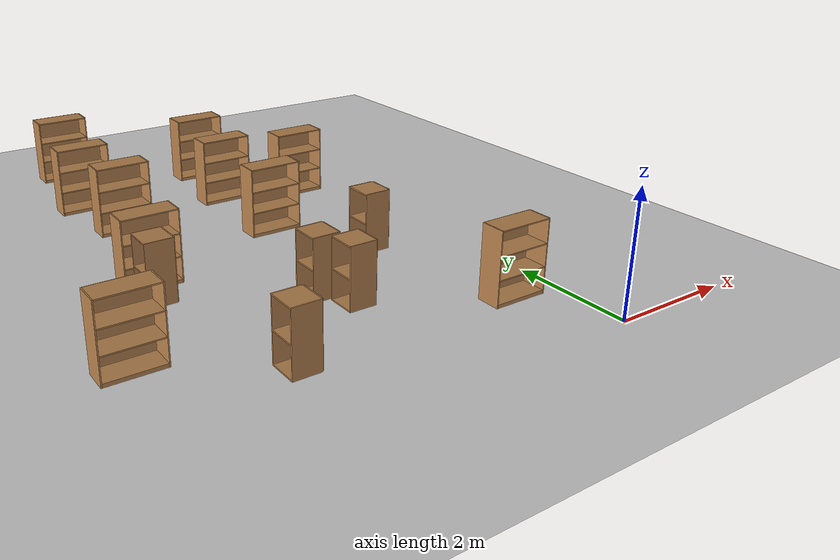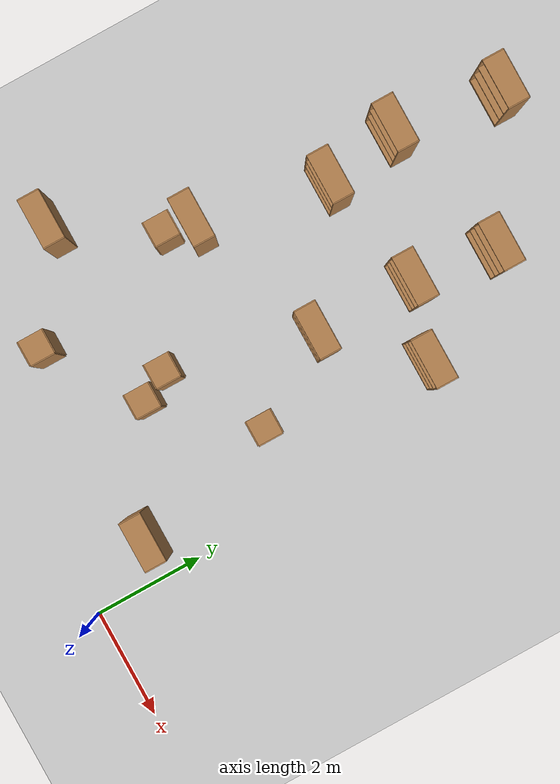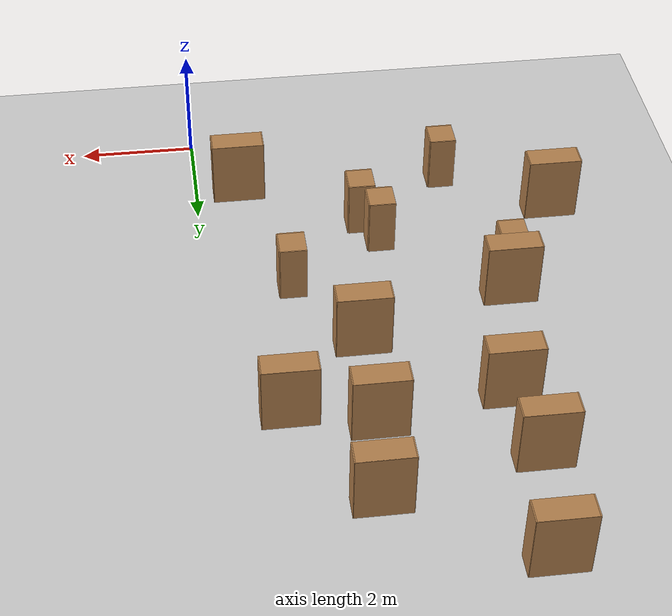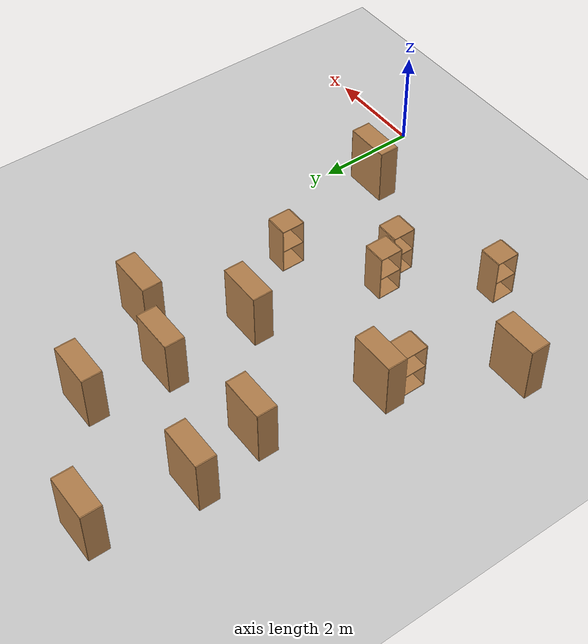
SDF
<sdf version="1.6">
 <world name="default">
  <model name="ground_plane">
   <static>1</static>
   <link name="link">
    <collision name="collision">
     <geometry><plane><normal>0 0 1</normal><size>100 100</size></plane></geometry>
     <surface><friction><ode><mu>100</mu><mu2>50</mu2></ode></friction></surface>
    </collision>
    <visual name="visual">
     <cast_shadows>0</cast_shadows>
     <geometry><plane><normal>0 0 1</normal><size>100 100</size></plane></geometry>
     <material>
      <script><uri>file://media/materials/scripts/gazebo.material</uri><name>Gazebo/Grey</name></script>
     </material>
    </visual>
   </link>
  </model>
  <model name="bookshelf_1">
   <static>1</static>
   <link name="link">
    <inertial><mass>1</mass></inertial>
    <collision name="back">
     <pose>0 0.005 0.6 0 -0 0</pose>
     <geometry><box><size>0.9 0.01 1.2</size></box></geometry>
    </collision>
    <visual name="visual1">
     <pose>0 0.005 0.6 0 -0 0</pose>
     <geometry><box><size>0.9 0.01 1.2</size></box></geometry>
     <material>
      <script><uri>file://media/materials/scripts/gazebo.material</uri><name>Gazebo/Wood</name></script>
     </material>
    </visual>
    <collision name="left_side">
     <pose>0.45 -0.195 0.6 0 -0 0</pose>
     <geometry><box><size>0.02 0.4 1.2</size></box></geometry>
    </collision>
    <visual name="visual2">
     <pose>0.45 -0.195 0.6 0 -0 0</pose>
     <geometry><box><size>0.02 0.4 1.2</size></box></geometry>
     <material>
      <script><uri>file://media/materials/scripts/gazebo.material</uri><name>Gazebo/Wood</name></script>
     </material>
    </visual>
    <collision name="right_side">
     <pose>-0.45 -0.195 0.6 0 -0 0</pose>
     <geometry><box><size>0.02 0.4 1.2</size></box></geometry>
    </collision>
    <visual name="visual3">
     <pose>-0.45 -0.195 0.6 0 -0 0</pose>
     <geometry><box><size>0.02 0.4 1.2</size></box></geometry>
     <material>
      <script><uri>file://media/materials/scripts/gazebo.material</uri><name>Gazebo/Wood</name></script>
     </material>
    </visual>
    <collision name="bottom">
     <pose>0 -0.195 0.03 0 -0 0</pose>
     <geometry><box><size>0.88 0.4 0.06</size></box></geometry>
    </collision>
    <visual name="visual4">
     <pose>0 -0.195 0.03 0 -0 0</pose>
     <geometry><box><size>0.88 0.4 0.06</size></box></geometry>
     <material>
      <script><uri>file://media/materials/scripts/gazebo.material</uri><name>Gazebo/Wood</name></script>
     </material>
    </visual>
    <collision name="top">
     <pose>0 -0.195 1.19 0 -0 0</pose>
     <geometry><box><size>0.88 0.4 0.02</size></box></geometry>
    </collision>
    <visual name="visual5">
     <pose>0 -0.195 1.19 0 -0 0</pose>
     <geometry><box><size>0.88 0.4 0.02</size></box></geometry>
     <material>
      <script><uri>file://media/materials/scripts/gazebo.material</uri><name>Gazebo/Wood</name></script>
     </material>
    </visual>
    <collision name="low_shelf">
     <pose>0 -0.195 0.43 0 -0 0</pose>
     <geometry><box><size>0.88 0.4 0.02</size></box></geometry>
    </collision>
    <visual name="visual6">
     <pose>0 -0.195 0.43 0 -0 0</pose>
     <geometry><box><size>0.88 0.4 0.02</size></box></geometry>
     <material>
      <script><uri>file://media/materials/scripts/gazebo.material</uri><name>Gazebo/Wood</name></script>
     </material>
    </visual>
    <collision name="high_shelf">
     <pose>0 -0.195 0.8 0 -0 0</pose>
     <geometry><box><size>0.88 0.4 0.02</size></box></geometry>
    </collision>
    <visual name="visual7">
     <pose>0 -0.195 0.8 0 -0 0</pose>
     <geometry><box><size>0.88 0.4 0.02</size></box></geometry>
     <material>
      <script><uri>file://media/materials/scripts/gazebo.material</uri><name>Gazebo/Wood</name></script>
     </material>
    </visual>
   </link>
   <pose>-4.77804 8.57789 0 0 -0 0</pose>
  </model>
  <model name="bookshelf_2">
   <static>1</static>
   <link name="link">
    <inertial><mass>1</mass></inertial>
    <collision name="back">
     <pose>0 0.005 0.6 0 -0 0</pose>
     <geometry><box><size>0.9 0.01 1.2</size></box></geometry>
    </collision>
    <visual name="visual1">
     <pose>0 0.005 0.6 0 -0 0</pose>
     <geometry><box><size>0.9 0.01 1.2</size></box></geometry>
     <material>
      <script><uri>file://media/materials/scripts/gazebo.material</uri><name>Gazebo/Wood</name></script>
     </material>
    </visual>
    <collision name="left_side">
     <pose>0.45 -0.195 0.6 0 -0 0</pose>
     <geometry><box><size>0.02 0.4 1.2</size></box></geometry>
    </collision>
    <visual name="visual2">
     <pose>0.45 -0.195 0.6 0 -0 0</pose>
     <geometry><box><size>0.02 0.4 1.2</size></box></geometry>
     <material>
      <script><uri>file://media/materials/scripts/gazebo.material</uri><name>Gazebo/Wood</name></script>
     </material>
    </visual>
    <collision name="right_side">
     <pose>-0.45 -0.195 0.6 0 -0 0</pose>
     <geometry><box><size>0.02 0.4 1.2</size></box></geometry>
    </collision>
    <visual name="visual3">
     <pose>-0.45 -0.195 0.6 0 -0 0</pose>
     <geometry><box><size>0.02 0.4 1.2</size></box></geometry>
     <material>
      <script><uri>file://media/materials/scripts/gazebo.material</uri><name>Gazebo/Wood</name></script>
     </material>
    </visual>
    <collision name="bottom">
     <pose>0 -0.195 0.03 0 -0 0</pose>
     <geometry><box><size>0.88 0.4 0.06</size></box></geometry>
    </collision>
    <visual name="visual4">
     <pose>0 -0.195 0.03 0 -0 0</pose>
     <geometry><box><size>0.88 0.4 0.06</size></box></geometry>
     <material>
      <script><uri>file://media/materials/scripts/gazebo.material</uri><name>Gazebo/Wood</name></script>
     </material>
    </visual>
    <collision name="top">
     <pose>0 -0.195 1.19 0 -0 0</pose>
     <geometry><box><size>0.88 0.4 0.02</size></box></geometry>
    </collision>
    <visual name="visual5">
     <pose>0 -0.195 1.19 0 -0 0</pose>
     <geometry><box><size>0.88 0.4 0.02</size></box></geometry>
     <material>
      <script><uri>file://media/materials/scripts/gazebo.material</uri><name>Gazebo/Wood</name></script>
     </material>
    </visual>
    <collision name="low_shelf">
     <pose>0 -0.195 0.43 0 -0 0</pose>
     <geometry><box><size>0.88 0.4 0.02</size></box></geometry>
    </collision>
    <visual name="visual6">
     <pose>0 -0.195 0.43 0 -0 0</pose>
     <geometry><box><size>0.88 0.4 0.02</size></box></geometry>
     <material>
      <script><uri>file://media/materials/scripts/gazebo.material</uri><name>Gazebo/Wood</name></script>
     </material>
    </visual>
    <collision name="high_shelf">
     <pose>0 -0.195 0.8 0 -0 0</pose>
     <geometry><box><size>0.88 0.4 0.02</size></box></geometry>
    </collision>
    <visual name="visual7">
     <pose>0 -0.195 0.8 0 -0 0</pose>
     <geometry><box><size>0.88 0.4 0.02</size></box></geometry>
     <material>
      <script><uri>file://media/materials/scripts/gazebo.material</uri><name>Gazebo/Wood</name></script>
     </material>
    </visual>
   </link>
   <pose>-2.41754 7.64902 0 0 -0 0</pose>
  </model>
  <model name="bookshelf_7">
   <static>1</static>
   <link name="link">
    <inertial><mass>1</mass></inertial>
    <collision name="back">
     <pose>0 0.005 0.6 0 -0 0</pose>
     <geometry><box><size>0.9 0.01 1.2</size></box></geometry>
    </collision>
    <visual name="visual1">
     <pose>0 0.005 0.6 0 -0 0</pose>
     <geometry><box><size>0.9 0.01 1.2</size></box></geometry>
     <material>
      <script><uri>file://media/materials/scripts/gazebo.material</uri><name>Gazebo/Wood</name></script>
     </material>
    </visual>
    <collision name="left_side">
     <pose>0.45 -0.195 0.6 0 -0 0</pose>
     <geometry><box><size>0.02 0.4 1.2</size></box></geometry>
    </collision>
    <visual name="visual2">
     <pose>0.45 -0.195 0.6 0 -0 0</pose>
     <geometry><box><size>0.02 0.4 1.2</size></box></geometry>
     <material>
      <script><uri>file://media/materials/scripts/gazebo.material</uri><name>Gazebo/Wood</name></script>
     </material>
    </visual>
    <collision name="right_side">
     <pose>-0.45 -0.195 0.6 0 -0 0</pose>
     <geometry><box><size>0.02 0.4 1.2</size></box></geometry>
    </collision>
    <visual name="visual3">
     <pose>-0.45 -0.195 0.6 0 -0 0</pose>
     <geometry><box><size>0.02 0.4 1.2</size></box></geometry>
     <material>
      <script><uri>file://media/materials/scripts/gazebo.material</uri><name>Gazebo/Wood</name></script>
     </material>
    </visual>
    <collision name="bottom">
     <pose>0 -0.195 0.03 0 -0 0</pose>
     <geometry><box><size>0.88 0.4 0.06</size></box></geometry>
    </collision>
    <visual name="visual4">
     <pose>0 -0.195 0.03 0 -0 0</pose>
     <geometry><box><size>0.88 0.4 0.06</size></box></geometry>
     <material>
      <script><uri>file://media/materials/scripts/gazebo.material</uri><name>Gazebo/Wood</name></script>
     </material>
    </visual>
    <collision name="top">
     <pose>0 -0.195 1.19 0 -0 0</pose>
     <geometry><box><size>0.88 0.4 0.02</size></box></geometry>
    </collision>
    <visual name="visual5">
     <pose>0 -0.195 1.19 0 -0 0</pose>
     <geometry><box><size>0.88 0.4 0.02</size></box></geometry>
     <material>
      <script><uri>file://media/materials/scripts/gazebo.material</uri><name>Gazebo/Wood</name></script>
     </material>
    </visual>
    <collision name="low_shelf">
     <pose>0 -0.195 0.43 0 -0 0</pose>
     <geometry><box><size>0.88 0.4 0.02</size></box></geometry>
    </collision>
    <visual name="visual6">
     <pose>0 -0.195 0.43 0 -0 0</pose>
     <geometry><box><size>0.88 0.4 0.02</size></box></geometry>
     <material>
      <script><uri>file://media/materials/scripts/gazebo.material</uri><name>Gazebo/Wood</name></script>
     </material>
    </visual>
    <collision name="high_shelf">
     <pose>0 -0.195 0.8 0 -0 0</pose>
     <geometry><box><size>0.88 0.4 0.02</size></box></geometry>
    </collision>
    <visual name="visual7">
     <pose>0 -0.195 0.8 0 -0 0</pose>
     <geometry><box><size>0.88 0.4 0.02</size></box></geometry>
     <material>
      <script><uri>file://media/materials/scripts/gazebo.material</uri><name>Gazebo/Wood</name></script>
     </material>
    </visual>
   </link>
   <pose>-4.54763 7.23977 0 0 -0 0</pose>
  </model>
  <model name="bookshelf_8">
   <static>1</static>
   <link name="link">
    <inertial><mass>1</mass></inertial>
    <collision name="back">
     <pose>0 0.005 0.6 0 -0 0</pose>
     <geometry><box><size>0.9 0.01 1.2</size></box></geometry>
    </collision>
    <visual name="visual1">
     <pose>0 0.005 0.6 0 -0 0</pose>
     <geometry><box><size>0.9 0.01 1.2</size></box></geometry>
     <material>
      <script><uri>file://media/materials/scripts/gazebo.material</uri><name>Gazebo/Wood</name></script>
     </material>
    </visual>
    <collision name="left_side">
     <pose>0.45 -0.195 0.6 0 -0 0</pose>
     <geometry><box><size>0.02 0.4 1.2</size></box></geometry>
    </collision>
    <visual name="visual2">
     <pose>0.45 -0.195 0.6 0 -0 0</pose>
     <geometry><box><size>0.02 0.4 1.2</size></box></geometry>
     <material>
      <script><uri>file://media/materials/scripts/gazebo.material</uri><name>Gazebo/Wood</name></script>
     </material>
    </visual>
    <collision name="right_side">
     <pose>-0.45 -0.195 0.6 0 -0 0</pose>
     <geometry><box><size>0.02 0.4 1.2</size></box></geometry>
    </collision>
    <visual name="visual3">
     <pose>-0.45 -0.195 0.6 0 -0 0</pose>
     <geometry><box><size>0.02 0.4 1.2</size></box></geometry>
     <material>
      <script><uri>file://media/materials/scripts/gazebo.material</uri><name>Gazebo/Wood</name></script>
     </material>
    </visual>
    <collision name="bottom">
     <pose>0 -0.195 0.03 0 -0 0</pose>
     <geometry><box><size>0.88 0.4 0.06</size></box></geometry>
    </collision>
    <visual name="visual4">
     <pose>0 -0.195 0.03 0 -0 0</pose>
     <geometry><box><size>0.88 0.4 0.06</size></box></geometry>
     <material>
      <script><uri>file://media/materials/scripts/gazebo.material</uri><name>Gazebo/Wood</name></script>
     </material>
    </visual>
    <collision name="top">
     <pose>0 -0.195 1.19 0 -0 0</pose>
     <geometry><box><size>0.88 0.4 0.02</size></box></geometry>
    </collision>
    <visual name="visual5">
     <pose>0 -0.195 1.19 0 -0 0</pose>
     <geometry><box><size>0.88 0.4 0.02</size></box></geometry>
     <material>
      <script><uri>file://media/materials/scripts/gazebo.material</uri><name>Gazebo/Wood</name></script>
     </material>
    </visual>
    <collision name="low_shelf">
     <pose>0 -0.195 0.43 0 -0 0</pose>
     <geometry><box><size>0.88 0.4 0.02</size></box></geometry>
    </collision>
    <visual name="visual6">
     <pose>0 -0.195 0.43 0 -0 0</pose>
     <geometry><box><size>0.88 0.4 0.02</size></box></geometry>
     <material>
      <script><uri>file://media/materials/scripts/gazebo.material</uri><name>Gazebo/Wood</name></script>
     </material>
    </visual>
    <collision name="high_shelf">
     <pose>0 -0.195 0.8 0 -0 0</pose>
     <geometry><box><size>0.88 0.4 0.02</size></box></geometry>
    </collision>
    <visual name="visual7">
     <pose>0 -0.195 0.8 0 -0 0</pose>
     <geometry><box><size>0.88 0.4 0.02</size></box></geometry>
     <material>
      <script><uri>file://media/materials/scripts/gazebo.material</uri><name>Gazebo/Wood</name></script>
     </material>
    </visual>
   </link>
   <pose>-1.08323 7.26477 0 0 -0 0</pose>
  </model>
  <model name="bookshelf_12">
   <static>1</static>
   <link name="link">
    <inertial><mass>1</mass></inertial>
    <collision name="back">
     <pose>0 0.005 0.6 0 -0 0</pose>
     <geometry><box><size>0.9 0.01 1.2</size></box></geometry>
    </collision>
    <visual name="visual1">
     <pose>0 0.005 0.6 0 -0 0</pose>
     <geometry><box><size>0.9 0.01 1.2</size></box></geometry>
     <material>
      <script><uri>file://media/materials/scripts/gazebo.material</uri><name>Gazebo/Wood</name></script>
     </material>
    </visual>
    <collision name="left_side">
     <pose>0.45 -0.195 0.6 0 -0 0</pose>
     <geometry><box><size>0.02 0.4 1.2</size></box></geometry>
    </collision>
    <visual name="visual2">
     <pose>0.45 -0.195 0.6 0 -0 0</pose>
     <geometry><box><size>0.02 0.4 1.2</size></box></geometry>
     <material>
      <script><uri>file://media/materials/scripts/gazebo.material</uri><name>Gazebo/Wood</name></script>
     </material>
    </visual>
    <collision name="right_side">
     <pose>-0.45 -0.195 0.6 0 -0 0</pose>
     <geometry><box><size>0.02 0.4 1.2</size></box></geometry>
    </collision>
    <visual name="visual3">
     <pose>-0.45 -0.195 0.6 0 -0 0</pose>
     <geometry><box><size>0.02 0.4 1.2</size></box></geometry>
     <material>
      <script><uri>file://media/materials/scripts/gazebo.material</uri><name>Gazebo/Wood</name></script>
     </material>
    </visual>
    <collision name="bottom">
     <pose>0 -0.195 0.03 0 -0 0</pose>
     <geometry><box><size>0.88 0.4 0.06</size></box></geometry>
    </collision>
    <visual name="visual4">
     <pose>0 -0.195 0.03 0 -0 0</pose>
     <geometry><box><size>0.88 0.4 0.06</size></box></geometry>
     <material>
      <script><uri>file://media/materials/scripts/gazebo.material</uri><name>Gazebo/Wood</name></script>
     </material>
    </visual>
    <collision name="top">
     <pose>0 -0.195 1.19 0 -0 0</pose>
     <geometry><box><size>0.88 0.4 0.02</size></box></geometry>
    </collision>
    <visual name="visual5">
     <pose>0 -0.195 1.19 0 -0 0</pose>
     <geometry><box><size>0.88 0.4 0.02</size></box></geometry>
     <material>
      <script><uri>file://media/materials/scripts/gazebo.material</uri><name>Gazebo/Wood</name></script>
     </material>
    </visual>
    <collision name="low_shelf">
     <pose>0 -0.195 0.43 0 -0 0</pose>
     <geometry><box><size>0.88 0.4 0.02</size></box></geometry>
    </collision>
    <visual name="visual6">
     <pose>0 -0.195 0.43 0 -0 0</pose>
     <geometry><box><size>0.88 0.4 0.02</size></box></geometry>
     <material>
      <script><uri>file://media/materials/scripts/gazebo.material</uri><name>Gazebo/Wood</name></script>
     </material>
    </visual>
    <collision name="high_shelf">
     <pose>0 -0.195 0.8 0 -0 0</pose>
     <geometry><box><size>0.88 0.4 0.02</size></box></geometry>
    </collision>
    <visual name="visual7">
     <pose>0 -0.195 0.8 0 -0 0</pose>
     <geometry><box><size>0.88 0.4 0.02</size></box></geometry>
     <material>
      <script><uri>file://media/materials/scripts/gazebo.material</uri><name>Gazebo/Wood</name></script>
     </material>
    </visual>
   </link>
   <pose>-5.03321 4.90715 0 0 -0 0</pose>
  </model>
  <model name="bookshelf_13">
   <static>1</static>
   <link name="link">
    <inertial><mass>1</mass></inertial>
    <collision name="back">
     <pose>0 0.005 0.6 0 -0 0</pose>
     <geometry><box><size>0.9 0.01 1.2</size></box></geometry>
    </collision>
    <visual name="visual1">
     <pose>0 0.005 0.6 0 -0 0</pose>
     <geometry><box><size>0.9 0.01 1.2</size></box></geometry>
     <material>
      <script><uri>file://media/materials/scripts/gazebo.material</uri><name>Gazebo/Wood</name></script>
     </material>
    </visual>
    <collision name="left_side">
     <pose>0.45 -0.195 0.6 0 -0 0</pose>
     <geometry><box><size>0.02 0.4 1.2</size></box></geometry>
    </collision>
    <visual name="visual2">
     <pose>0.45 -0.195 0.6 0 -0 0</pose>
     <geometry><box><size>0.02 0.4 1.2</size></box></geometry>
     <material>
      <script><uri>file://media/materials/scripts/gazebo.material</uri><name>Gazebo/Wood</name></script>
     </material>
    </visual>
    <collision name="right_side">
     <pose>-0.45 -0.195 0.6 0 -0 0</pose>
     <geometry><box><size>0.02 0.4 1.2</size></box></geometry>
    </collision>
    <visual name="visual3">
     <pose>-0.45 -0.195 0.6 0 -0 0</pose>
     <geometry><box><size>0.02 0.4 1.2</size></box></geometry>
     <material>
      <script><uri>file://media/materials/scripts/gazebo.material</uri><name>Gazebo/Wood</name></script>
     </material>
    </visual>
    <collision name="bottom">
     <pose>0 -0.195 0.03 0 -0 0</pose>
     <geometry><box><size>0.88 0.4 0.06</size></box></geometry>
    </collision>
    <visual name="visual4">
     <pose>0 -0.195 0.03 0 -0 0</pose>
     <geometry><box><size>0.88 0.4 0.06</size></box></geometry>
     <material>
      <script><uri>file://media/materials/scripts/gazebo.material</uri><name>Gazebo/Wood</name></script>
     </material>
    </visual>
    <collision name="top">
     <pose>0 -0.195 1.19 0 -0 0</pose>
     <geometry><box><size>0.88 0.4 0.02</size></box></geometry>
    </collision>
    <visual name="visual5">
     <pose>0 -0.195 1.19 0 -0 0</pose>
     <geometry><box><size>0.88 0.4 0.02</size></box></geometry>
     <material>
      <script><uri>file://media/materials/scripts/gazebo.material</uri><name>Gazebo/Wood</name></script>
     </material>
    </visual>
    <collision name="low_shelf">
     <pose>0 -0.195 0.43 0 -0 0</pose>
     <geometry><box><size>0.88 0.4 0.02</size></box></geometry>
    </collision>
    <visual name="visual6">
     <pose>0 -0.195 0.43 0 -0 0</pose>
     <geometry><box><size>0.88 0.4 0.02</size></box></geometry>
     <material>
      <script><uri>file://media/materials/scripts/gazebo.material</uri><name>Gazebo/Wood</name></script>
     </material>
    </visual>
    <collision name="high_shelf">
     <pose>0 -0.195 0.8 0 -0 0</pose>
     <geometry><box><size>0.88 0.4 0.02</size></box></geometry>
    </collision>
    <visual name="visual7">
     <pose>0 -0.195 0.8 0 -0 0</pose>
     <geometry><box><size>0.88 0.4 0.02</size></box></geometry>
     <material>
      <script><uri>file://media/materials/scripts/gazebo.material</uri><name>Gazebo/Wood</name></script>
     </material>
    </visual>
   </link>
   <pose>-2.42242 5.82535 0 0 -0 0</pose>
  </model>
  <model name="cabinet_1">
   <static>1</static>
   <link name="cabinet_bottom_plate">
    <inertial>
     <pose>0 0 -1 0 -0 0</pose>
     <inertia><ixx>2.05</ixx><ixy>0</ixy><ixz>0</ixz><iyy>2.05</iyy><iyz>0</iyz><izz>2.05</izz></inertia>
     <mass>25</mass>
    </inertial>
    <collision name="cabinet_bottom_plate_geom">
     <pose>0 0 0.01 0 -0 0</pose>
     <geometry><box><size>0.45 0.45 0.02</size></box></geometry>
    </collision>
    <visual name="cabinet_bottom_plate_geom_visual">
     <pose>0 0 0.01 0 -0 0</pose>
     <geometry><box><size>0.45 0.45 0.02</size></box></geometry>
     <material>
      <script><uri>file://media/materials/scripts/gazebo.material</uri><name>Gazebo/Wood</name></script>
     </material>
    </visual>
    <collision name="cabinet_bottom_plate_geom_cabinet_back_plate">
     <pose>0.235 0 0.51 0 -0 0</pose>
     <geometry><box><size>0.02 0.45 1.02</size></box></geometry>
    </collision>
    <visual name="cabinet_bottom_plate_geom_cabinet_back_plate_visual">
     <pose>0.235 0 0.51 0 -0 0</pose>
     <geometry><box><size>0.02 0.45 1.02</size></box></geometry>
     <material>
      <script><uri>file://media/materials/scripts/gazebo.material</uri><name>Gazebo/Wood</name></script>
     </material>
    </visual>
    <collision name="cabinet_bottom_plate_geom_cabinet_left_plate">
     <pose>0 0.235 0.51 0 -0 0</pose>
     <geometry><box><size>0.45 0.02 1.02</size></box></geometry>
    </collision>
    <visual name="cabinet_bottom_plate_geom_cabinet_left_plate_visual">
     <pose>0 0.235 0.51 0 -0 0</pose>
     <geometry><box><size>0.45 0.02 1.02</size></box></geometry>
     <material>
      <script><uri>file://media/materials/scripts/gazebo.material</uri><name>Gazebo/Wood</name></script>
     </material>
    </visual>
    <collision name="cabinet_bottom_plate_geom_cabinet_middle_plate">
     <pose>0 0 0.51 0 -0 0</pose>
     <geometry><box><size>0.45 0.45 0.02</size></box></geometry>
    </collision>
    <visual name="cabinet_bottom_plate_geom_cabinet_middle_plate_visual">
     <pose>0 0 0.51 0 -0 0</pose>
     <geometry><box><size>0.45 0.45 0.02</size></box></geometry>
     <material>
      <script><uri>file://media/materials/scripts/gazebo.material</uri><name>Gazebo/Wood</name></script>
     </material>
    </visual>
    <collision name="cabinet_bottom_plate_geom_cabinet_right_plate">
     <pose>0 -0.235 0.51 0 -0 0</pose>
     <geometry><box><size>0.45 0.02 1.02</size></box></geometry>
    </collision>
    <visual name="cabinet_bottom_plate_geom_cabinet_right_plate_visual">
     <pose>0 -0.235 0.51 0 -0 0</pose>
     <geometry><box><size>0.45 0.02 1.02</size></box></geometry>
     <material>
      <script><uri>file://media/materials/scripts/gazebo.material</uri><name>Gazebo/Wood</name></script>
     </material>
    </visual>
    <collision name="cabinet_bottom_plate_geom_cabinet_top_plate">
     <pose>0 0 1.01 0 -0 0</pose>
     <geometry><box><size>0.45 0.45 0.02</size></box></geometry>
    </collision>
    <visual name="cabinet_bottom_plate_geom_cabinet_top_plate_visual">
     <pose>0 0 1.01 0 -0 0</pose>
     <geometry><box><size>0.45 0.45 0.02</size></box></geometry>
     <material>
      <script><uri>file://media/materials/scripts/gazebo.material</uri><name>Gazebo/Wood</name></script>
     </material>
    </visual>
   </link>
   <pose>-5.14935 4.19525 0 0 -0 0</pose>
  </model>
  <model name="cabinet_2">
   <static>1</static>
   <link name="cabinet_bottom_plate">
    <inertial>
     <pose>0 0 -1 0 -0 0</pose>
     <inertia><ixx>2.05</ixx><ixy>0</ixy><ixz>0</ixz><iyy>2.05</iyy><iyz>0</iyz><izz>2.05</izz></inertia>
     <mass>25</mass>
    </inertial>
    <collision name="cabinet_bottom_plate_geom">
     <pose>0 0 0.01 0 -0 0</pose>
     <geometry><box><size>0.45 0.45 0.02</size></box></geometry>
    </collision>
    <visual name="cabinet_bottom_plate_geom_visual">
     <pose>0 0 0.01 0 -0 0</pose>
     <geometry><box><size>0.45 0.45 0.02</size></box></geometry>
     <material>
      <script><uri>file://media/materials/scripts/gazebo.material</uri><name>Gazebo/Wood</name></script>
     </material>
    </visual>
    <collision name="cabinet_bottom_plate_geom_cabinet_back_plate">
     <pose>0.235 0 0.51 0 -0 0</pose>
     <geometry><box><size>0.02 0.45 1.02</size></box></geometry>
    </collision>
    <visual name="cabinet_bottom_plate_geom_cabinet_back_plate_visual">
     <pose>0.235 0 0.51 0 -0 0</pose>
     <geometry><box><size>0.02 0.45 1.02</size></box></geometry>
     <material>
      <script><uri>file://media/materials/scripts/gazebo.material</uri><name>Gazebo/Wood</name></script>
     </material>
    </visual>
    <collision name="cabinet_bottom_plate_geom_cabinet_left_plate">
     <pose>0 0.235 0.51 0 -0 0</pose>
     <geometry><box><size>0.45 0.02 1.02</size></box></geometry>
    </collision>
    <visual name="cabinet_bottom_plate_geom_cabinet_left_plate_visual">
     <pose>0 0.235 0.51 0 -0 0</pose>
     <geometry><box><size>0.45 0.02 1.02</size></box></geometry>
     <material>
      <script><uri>file://media/materials/scripts/gazebo.material</uri><name>Gazebo/Wood</name></script>
     </material>
    </visual>
    <collision name="cabinet_bottom_plate_geom_cabinet_middle_plate">
     <pose>0 0 0.51 0 -0 0</pose>
     <geometry><box><size>0.45 0.45 0.02</size></box></geometry>
    </collision>
    <visual name="cabinet_bottom_plate_geom_cabinet_middle_plate_visual">
     <pose>0 0 0.51 0 -0 0</pose>
     <geometry><box><size>0.45 0.45 0.02</size></box></geometry>
     <material>
      <script><uri>file://media/materials/scripts/gazebo.material</uri><name>Gazebo/Wood</name></script>
     </material>
    </visual>
    <collision name="cabinet_bottom_plate_geom_cabinet_right_plate">
     <pose>0 -0.235 0.51 0 -0 0</pose>
     <geometry><box><size>0.45 0.02 1.02</size></box></geometry>
    </collision>
    <visual name="cabinet_bottom_plate_geom_cabinet_right_plate_visual">
     <pose>0 -0.235 0.51 0 -0 0</pose>
     <geometry><box><size>0.45 0.02 1.02</size></box></geometry>
     <material>
      <script><uri>file://media/materials/scripts/gazebo.material</uri><name>Gazebo/Wood</name></script>
     </material>
    </visual>
    <collision name="cabinet_bottom_plate_geom_cabinet_top_plate">
     <pose>0 0 1.01 0 -0 0</pose>
     <geometry><box><size>0.45 0.45 0.02</size></box></geometry>
    </collision>
    <visual name="cabinet_bottom_plate_geom_cabinet_top_plate_visual">
     <pose>0 0 1.01 0 -0 0</pose>
     <geometry><box><size>0.45 0.45 0.02</size></box></geometry>
     <material>
      <script><uri>file://media/materials/scripts/gazebo.material</uri><name>Gazebo/Wood</name></script>
     </material>
    </visual>
   </link>
   <pose>-3.09038 3.0734 0 0 -0 0</pose>
  </model>
  <model name="cabinet_3">
   <static>1</static>
   <link name="cabinet_bottom_plate">
    <inertial>
     <pose>0 0 -1 0 -0 0</pose>
     <inertia><ixx>2.05</ixx><ixy>0</ixy><ixz>0</ixz><iyy>2.05</iyy><iyz>0</iyz><izz>2.05</izz></inertia>
     <mass>25</mass>
    </inertial>
    <collision name="cabinet_bottom_plate_geom">
     <pose>0 0 0.01 0 -0 0</pose>
     <geometry><box><size>0.45 0.45 0.02</size></box></geometry>
    </collision>
    <visual name="cabinet_bottom_plate_geom_visual">
     <pose>0 0 0.01 0 -0 0</pose>
     <geometry><box><size>0.45 0.45 0.02</size></box></geometry>
     <material>
      <script><uri>file://media/materials/scripts/gazebo.material</uri><name>Gazebo/Wood</name></script>
     </material>
    </visual>
    <collision name="cabinet_bottom_plate_geom_cabinet_back_plate">
     <pose>0.235 0 0.51 0 -0 0</pose>
     <geometry><box><size>0.02 0.45 1.02</size></box></geometry>
    </collision>
    <visual name="cabinet_bottom_plate_geom_cabinet_back_plate_visual">
     <pose>0.235 0 0.51 0 -0 0</pose>
     <geometry><box><size>0.02 0.45 1.02</size></box></geometry>
     <material>
      <script><uri>file://media/materials/scripts/gazebo.material</uri><name>Gazebo/Wood</name></script>
     </material>
    </visual>
    <collision name="cabinet_bottom_plate_geom_cabinet_left_plate">
     <pose>0 0.235 0.51 0 -0 0</pose>
     <geometry><box><size>0.45 0.02 1.02</size></box></geometry>
    </collision>
    <visual name="cabinet_bottom_plate_geom_cabinet_left_plate_visual">
     <pose>0 0.235 0.51 0 -0 0</pose>
     <geometry><box><size>0.45 0.02 1.02</size></box></geometry>
     <material>
      <script><uri>file://media/materials/scripts/gazebo.material</uri><name>Gazebo/Wood</name></script>
     </material>
    </visual>
    <collision name="cabinet_bottom_plate_geom_cabinet_middle_plate">
     <pose>0 0 0.51 0 -0 0</pose>
     <geometry><box><size>0.45 0.45 0.02</size></box></geometry>
    </collision>
    <visual name="cabinet_bottom_plate_geom_cabinet_middle_plate_visual">
     <pose>0 0 0.51 0 -0 0</pose>
     <geometry><box><size>0.45 0.45 0.02</size></box></geometry>
     <material>
      <script><uri>file://media/materials/scripts/gazebo.material</uri><name>Gazebo/Wood</name></script>
     </material>
    </visual>
    <collision name="cabinet_bottom_plate_geom_cabinet_right_plate">
     <pose>0 -0.235 0.51 0 -0 0</pose>
     <geometry><box><size>0.45 0.02 1.02</size></box></geometry>
    </collision>
    <visual name="cabinet_bottom_plate_geom_cabinet_right_plate_visual">
     <pose>0 -0.235 0.51 0 -0 0</pose>
     <geometry><box><size>0.45 0.02 1.02</size></box></geometry>
     <material>
      <script><uri>file://media/materials/scripts/gazebo.material</uri><name>Gazebo/Wood</name></script>
     </material>
    </visual>
    <collision name="cabinet_bottom_plate_geom_cabinet_top_plate">
     <pose>0 0 1.01 0 -0 0</pose>
     <geometry><box><size>0.45 0.45 0.02</size></box></geometry>
    </collision>
    <visual name="cabinet_bottom_plate_geom_cabinet_top_plate_visual">
     <pose>0 0 1.01 0 -0 0</pose>
     <geometry><box><size>0.45 0.45 0.02</size></box></geometry>
     <material>
      <script><uri>file://media/materials/scripts/gazebo.material</uri><name>Gazebo/Wood</name></script>
     </material>
    </visual>
   </link>
   <pose>-1.45262 4.09513 0 0 -0 0</pose>
  </model>
  <model name="bookshelf_16">
   <static>1</static>
   <link name="link">
    <inertial><mass>1</mass></inertial>
    <collision name="back">
     <pose>0 0.005 0.6 0 -0 0</pose>
     <geometry><box><size>0.9 0.01 1.2</size></box></geometry>
    </collision>
    <visual name="visual1">
     <pose>0 0.005 0.6 0 -0 0</pose>
     <geometry><box><size>0.9 0.01 1.2</size></box></geometry>
     <material>
      <script><uri>file://media/materials/scripts/gazebo.material</uri><name>Gazebo/Wood</name></script>
     </material>
    </visual>
    <collision name="left_side">
     <pose>0.45 -0.195 0.6 0 -0 0</pose>
     <geometry><box><size>0.02 0.4 1.2</size></box></geometry>
    </collision>
    <visual name="visual2">
     <pose>0.45 -0.195 0.6 0 -0 0</pose>
     <geometry><box><size>0.02 0.4 1.2</size></box></geometry>
     <material>
      <script><uri>file://media/materials/scripts/gazebo.material</uri><name>Gazebo/Wood</name></script>
     </material>
    </visual>
    <collision name="right_side">
     <pose>-0.45 -0.195 0.6 0 -0 0</pose>
     <geometry><box><size>0.02 0.4 1.2</size></box></geometry>
    </collision>
    <visual name="visual3">
     <pose>-0.45 -0.195 0.6 0 -0 0</pose>
     <geometry><box><size>0.02 0.4 1.2</size></box></geometry>
     <material>
      <script><uri>file://media/materials/scripts/gazebo.material</uri><name>Gazebo/Wood</name></script>
     </material>
    </visual>
    <collision name="bottom">
     <pose>0 -0.195 0.03 0 -0 0</pose>
     <geometry><box><size>0.88 0.4 0.06</size></box></geometry>
    </collision>
    <visual name="visual4">
     <pose>0 -0.195 0.03 0 -0 0</pose>
     <geometry><box><size>0.88 0.4 0.06</size></box></geometry>
     <material>
      <script><uri>file://media/materials/scripts/gazebo.material</uri><name>Gazebo/Wood</name></script>
     </material>
    </visual>
    <collision name="top">
     <pose>0 -0.195 1.19 0 -0 0</pose>
     <geometry><box><size>0.88 0.4 0.02</size></box></geometry>
    </collision>
    <visual name="visual5">
     <pose>0 -0.195 1.19 0 -0 0</pose>
     <geometry><box><size>0.88 0.4 0.02</size></box></geometry>
     <material>
      <script><uri>file://media/materials/scripts/gazebo.material</uri><name>Gazebo/Wood</name></script>
     </material>
    </visual>
    <collision name="low_shelf">
     <pose>0 -0.195 0.43 0 -0 0</pose>
     <geometry><box><size>0.88 0.4 0.02</size></box></geometry>
    </collision>
    <visual name="visual6">
     <pose>0 -0.195 0.43 0 -0 0</pose>
     <geometry><box><size>0.88 0.4 0.02</size></box></geometry>
     <material>
      <script><uri>file://media/materials/scripts/gazebo.material</uri><name>Gazebo/Wood</name></script>
     </material>
    </visual>
    <collision name="high_shelf">
     <pose>0 -0.195 0.8 0 -0 0</pose>
     <geometry><box><size>0.88 0.4 0.02</size></box></geometry>
    </collision>
    <visual name="visual7">
     <pose>0 -0.195 0.8 0 -0 0</pose>
     <geometry><box><size>0.88 0.4 0.02</size></box></geometry>
     <material>
      <script><uri>file://media/materials/scripts/gazebo.material</uri><name>Gazebo/Wood</name></script>
     </material>
    </visual>
   </link>
   <pose>-6.19927 2.74756 0 0 -0 0</pose>
  </model>
  <model name="cabinet_8">
   <static>1</static>
   <link name="cabinet_bottom_plate">
    <inertial>
     <pose>0 0 -1 0 -0 0</pose>
     <inertia><ixx>2.05</ixx><ixy>0</ixy><ixz>0</ixz><iyy>2.05</iyy><iyz>0</iyz><izz>2.05</izz></inertia>
     <mass>25</mass>
    </inertial>
    <collision name="cabinet_bottom_plate_geom">
     <pose>0 0 0.01 0 -0 0</pose>
     <geometry><box><size>0.45 0.45 0.02</size></box></geometry>
    </collision>
    <visual name="cabinet_bottom_plate_geom_visual">
     <pose>0 0 0.01 0 -0 0</pose>
     <geometry><box><size>0.45 0.45 0.02</size></box></geometry>
     <material>
      <script><uri>file://media/materials/scripts/gazebo.material</uri><name>Gazebo/Wood</name></script>
     </material>
    </visual>
    <collision name="cabinet_bottom_plate_geom_cabinet_back_plate">
     <pose>0.235 0 0.51 0 -0 0</pose>
     <geometry><box><size>0.02 0.45 1.02</size></box></geometry>
    </collision>
    <visual name="cabinet_bottom_plate_geom_cabinet_back_plate_visual">
     <pose>0.235 0 0.51 0 -0 0</pose>
     <geometry><box><size>0.02 0.45 1.02</size></box></geometry>
     <material>
      <script><uri>file://media/materials/scripts/gazebo.material</uri><name>Gazebo/Wood</name></script>
     </material>
    </visual>
    <collision name="cabinet_bottom_plate_geom_cabinet_left_plate">
     <pose>0 0.235 0.51 0 -0 0</pose>
     <geometry><box><size>0.45 0.02 1.02</size></box></geometry>
    </collision>
    <visual name="cabinet_bottom_plate_geom_cabinet_left_plate_visual">
     <pose>0 0.235 0.51 0 -0 0</pose>
     <geometry><box><size>0.45 0.02 1.02</size></box></geometry>
     <material>
      <script><uri>file://media/materials/scripts/gazebo.material</uri><name>Gazebo/Wood</name></script>
     </material>
    </visual>
    <collision name="cabinet_bottom_plate_geom_cabinet_middle_plate">
     <pose>0 0 0.51 0 -0 0</pose>
     <geometry><box><size>0.45 0.45 0.02</size></box></geometry>
    </collision>
    <visual name="cabinet_bottom_plate_geom_cabinet_middle_plate_visual">
     <pose>0 0 0.51 0 -0 0</pose>
     <geometry><box><size>0.45 0.45 0.02</size></box></geometry>
     <material>
      <script><uri>file://media/materials/scripts/gazebo.material</uri><name>Gazebo/Wood</name></script>
     </material>
    </visual>
    <collision name="cabinet_bottom_plate_geom_cabinet_right_plate">
     <pose>0 -0.235 0.51 0 -0 0</pose>
     <geometry><box><size>0.45 0.02 1.02</size></box></geometry>
    </collision>
    <visual name="cabinet_bottom_plate_geom_cabinet_right_plate_visual">
     <pose>0 -0.235 0.51 0 -0 0</pose>
     <geometry><box><size>0.45 0.02 1.02</size></box></geometry>
     <material>
      <script><uri>file://media/materials/scripts/gazebo.material</uri><name>Gazebo/Wood</name></script>
     </material>
    </visual>
    <collision name="cabinet_bottom_plate_geom_cabinet_top_plate">
     <pose>0 0 1.01 0 -0 0</pose>
     <geometry><box><size>0.45 0.45 0.02</size></box></geometry>
    </collision>
    <visual name="cabinet_bottom_plate_geom_cabinet_top_plate_visual">
     <pose>0 0 1.01 0 -0 0</pose>
     <geometry><box><size>0.45 0.45 0.02</size></box></geometry>
     <material>
      <script><uri>file://media/materials/scripts/gazebo.material</uri><name>Gazebo/Wood</name></script>
     </material>
    </visual>
   </link>
   <pose>-4.42652 1.43835 0 0 -0 0</pose>
  </model>
  <model name="cabinet_9">
   <static>1</static>
   <link name="cabinet_bottom_plate">
    <inertial>
     <pose>0 0 -1 0 -0 0</pose>
     <inertia><ixx>2.05</ixx><ixy>0</ixy><ixz>0</ixz><iyy>2.05</iyy><iyz>0</iyz><izz>2.05</izz></inertia>
     <mass>25</mass>
    </inertial>
    <collision name="cabinet_bottom_plate_geom">
     <pose>0 0 0.01 0 -0 0</pose>
     <geometry><box><size>0.45 0.45 0.02</size></box></geometry>
    </collision>
    <visual name="cabinet_bottom_plate_geom_visual">
     <pose>0 0 0.01 0 -0 0</pose>
     <geometry><box><size>0.45 0.45 0.02</size></box></geometry>
     <material>
      <script><uri>file://media/materials/scripts/gazebo.material</uri><name>Gazebo/Wood</name></script>
     </material>
    </visual>
    <collision name="cabinet_bottom_plate_geom_cabinet_back_plate">
     <pose>0.235 0 0.51 0 -0 0</pose>
     <geometry><box><size>0.02 0.45 1.02</size></box></geometry>
    </collision>
    <visual name="cabinet_bottom_plate_geom_cabinet_back_plate_visual">
     <pose>0.235 0 0.51 0 -0 0</pose>
     <geometry><box><size>0.02 0.45 1.02</size></box></geometry>
     <material>
      <script><uri>file://media/materials/scripts/gazebo.material</uri><name>Gazebo/Wood</name></script>
     </material>
    </visual>
    <collision name="cabinet_bottom_plate_geom_cabinet_left_plate">
     <pose>0 0.235 0.51 0 -0 0</pose>
     <geometry><box><size>0.45 0.02 1.02</size></box></geometry>
    </collision>
    <visual name="cabinet_bottom_plate_geom_cabinet_left_plate_visual">
     <pose>0 0.235 0.51 0 -0 0</pose>
     <geometry><box><size>0.45 0.02 1.02</size></box></geometry>
     <material>
      <script><uri>file://media/materials/scripts/gazebo.material</uri><name>Gazebo/Wood</name></script>
     </material>
    </visual>
    <collision name="cabinet_bottom_plate_geom_cabinet_middle_plate">
     <pose>0 0 0.51 0 -0 0</pose>
     <geometry><box><size>0.45 0.45 0.02</size></box></geometry>
    </collision>
    <visual name="cabinet_bottom_plate_geom_cabinet_middle_plate_visual">
     <pose>0 0 0.51 0 -0 0</pose>
     <geometry><box><size>0.45 0.45 0.02</size></box></geometry>
     <material>
      <script><uri>file://media/materials/scripts/gazebo.material</uri><name>Gazebo/Wood</name></script>
     </material>
    </visual>
    <collision name="cabinet_bottom_plate_geom_cabinet_right_plate">
     <pose>0 -0.235 0.51 0 -0 0</pose>
     <geometry><box><size>0.45 0.02 1.02</size></box></geometry>
    </collision>
    <visual name="cabinet_bottom_plate_geom_cabinet_right_plate_visual">
     <pose>0 -0.235 0.51 0 -0 0</pose>
     <geometry><box><size>0.45 0.02 1.02</size></box></geometry>
     <material>
      <script><uri>file://media/materials/scripts/gazebo.material</uri><name>Gazebo/Wood</name></script>
     </material>
    </visual>
    <collision name="cabinet_bottom_plate_geom_cabinet_top_plate">
     <pose>0 0 1.01 0 -0 0</pose>
     <geometry><box><size>0.45 0.45 0.02</size></box></geometry>
    </collision>
    <visual name="cabinet_bottom_plate_geom_cabinet_top_plate_visual">
     <pose>0 0 1.01 0 -0 0</pose>
     <geometry><box><size>0.45 0.45 0.02</size></box></geometry>
     <material>
      <script><uri>file://media/materials/scripts/gazebo.material</uri><name>Gazebo/Wood</name></script>
     </material>
    </visual>
   </link>
   <pose>-2.81305 2.54611 0 0 -0 0</pose>
  </model>
  <model name="bookshelf_17">
   <static>1</static>
   <link name="link">
    <inertial><mass>1</mass></inertial>
    <collision name="back">
     <pose>0 0.005 0.6 0 -0 0</pose>
     <geometry><box><size>0.9 0.01 1.2</size></box></geometry>
    </collision>
    <visual name="visual1">
     <pose>0 0.005 0.6 0 -0 0</pose>
     <geometry><box><size>0.9 0.01 1.2</size></box></geometry>
     <material>
      <script><uri>file://media/materials/scripts/gazebo.material</uri><name>Gazebo/Wood</name></script>
     </material>
    </visual>
    <collision name="left_side">
     <pose>0.45 -0.195 0.6 0 -0 0</pose>
     <geometry><box><size>0.02 0.4 1.2</size></box></geometry>
    </collision>
    <visual name="visual2">
     <pose>0.45 -0.195 0.6 0 -0 0</pose>
     <geometry><box><size>0.02 0.4 1.2</size></box></geometry>
     <material>
      <script><uri>file://media/materials/scripts/gazebo.material</uri><name>Gazebo/Wood</name></script>
     </material>
    </visual>
    <collision name="right_side">
     <pose>-0.45 -0.195 0.6 0 -0 0</pose>
     <geometry><box><size>0.02 0.4 1.2</size></box></geometry>
    </collision>
    <visual name="visual3">
     <pose>-0.45 -0.195 0.6 0 -0 0</pose>
     <geometry><box><size>0.02 0.4 1.2</size></box></geometry>
     <material>
      <script><uri>file://media/materials/scripts/gazebo.material</uri><name>Gazebo/Wood</name></script>
     </material>
    </visual>
    <collision name="bottom">
     <pose>0 -0.195 0.03 0 -0 0</pose>
     <geometry><box><size>0.88 0.4 0.06</size></box></geometry>
    </collision>
    <visual name="visual4">
     <pose>0 -0.195 0.03 0 -0 0</pose>
     <geometry><box><size>0.88 0.4 0.06</size></box></geometry>
     <material>
      <script><uri>file://media/materials/scripts/gazebo.material</uri><name>Gazebo/Wood</name></script>
     </material>
    </visual>
    <collision name="top">
     <pose>0 -0.195 1.19 0 -0 0</pose>
     <geometry><box><size>0.88 0.4 0.02</size></box></geometry>
    </collision>
    <visual name="visual5">
     <pose>0 -0.195 1.19 0 -0 0</pose>
     <geometry><box><size>0.88 0.4 0.02</size></box></geometry>
     <material>
      <script><uri>file://media/materials/scripts/gazebo.material</uri><name>Gazebo/Wood</name></script>
     </material>
    </visual>
    <collision name="low_shelf">
     <pose>0 -0.195 0.43 0 -0 0</pose>
     <geometry><box><size>0.88 0.4 0.02</size></box></geometry>
    </collision>
    <visual name="visual6">
     <pose>0 -0.195 0.43 0 -0 0</pose>
     <geometry><box><size>0.88 0.4 0.02</size></box></geometry>
     <material>
      <script><uri>file://media/materials/scripts/gazebo.material</uri><name>Gazebo/Wood</name></script>
     </material>
    </visual>
    <collision name="high_shelf">
     <pose>0 -0.195 0.8 0 -0 0</pose>
     <geometry><box><size>0.88 0.4 0.02</size></box></geometry>
    </collision>
    <visual name="visual7">
     <pose>0 -0.195 0.8 0 -0 0</pose>
     <geometry><box><size>0.88 0.4 0.02</size></box></geometry>
     <material>
      <script><uri>file://media/materials/scripts/gazebo.material</uri><name>Gazebo/Wood</name></script>
     </material>
    </visual>
   </link>
   <pose>-0.766877 1.63905 0 0 -0 0</pose>
  </model>
  <model name="bookshelf_51">
   <static>1</static>
   <link name="link">
    <inertial><mass>1</mass></inertial>
    <collision name="back">
     <pose>0 0.005 0.6 0 -0 0</pose>
     <geometry><box><size>0.9 0.01 1.2</size></box></geometry>
    </collision>
    <visual name="visual1">
     <pose>0 0.005 0.6 0 -0 0</pose>
     <geometry><box><size>0.9 0.01 1.2</size></box></geometry>
     <material>
      <script><uri>file://media/materials/scripts/gazebo.material</uri><name>Gazebo/Wood</name></script>
     </material>
    </visual>
    <collision name="left_side">
     <pose>0.45 -0.195 0.6 0 -0 0</pose>
     <geometry><box><size>0.02 0.4 1.2</size></box></geometry>
    </collision>
    <visual name="visual2">
     <pose>0.45 -0.195 0.6 0 -0 0</pose>
     <geometry><box><size>0.02 0.4 1.2</size></box></geometry>
     <material>
      <script><uri>file://media/materials/scripts/gazebo.material</uri><name>Gazebo/Wood</name></script>
     </material>
    </visual>
    <collision name="right_side">
     <pose>-0.45 -0.195 0.6 0 -0 0</pose>
     <geometry><box><size>0.02 0.4 1.2</size></box></geometry>
    </collision>
    <visual name="visual3">
     <pose>-0.45 -0.195 0.6 0 -0 0</pose>
     <geometry><box><size>0.02 0.4 1.2</size></box></geometry>
     <material>
      <script><uri>file://media/materials/scripts/gazebo.material</uri><name>Gazebo/Wood</name></script>
     </material>
    </visual>
    <collision name="bottom">
     <pose>0 -0.195 0.03 0 -0 0</pose>
     <geometry><box><size>0.88 0.4 0.06</size></box></geometry>
    </collision>
    <visual name="visual4">
     <pose>0 -0.195 0.03 0 -0 0</pose>
     <geometry><box><size>0.88 0.4 0.06</size></box></geometry>
     <material>
      <script><uri>file://media/materials/scripts/gazebo.material</uri><name>Gazebo/Wood</name></script>
     </material>
    </visual>
    <collision name="top">
     <pose>0 -0.195 1.19 0 -0 0</pose>
     <geometry><box><size>0.88 0.4 0.02</size></box></geometry>
    </collision>
    <visual name="visual5">
     <pose>0 -0.195 1.19 0 -0 0</pose>
     <geometry><box><size>0.88 0.4 0.02</size></box></geometry>
     <material>
      <script><uri>file://media/materials/scripts/gazebo.material</uri><name>Gazebo/Wood</name></script>
     </material>
    </visual>
    <collision name="low_shelf">
     <pose>0 -0.195 0.43 0 -0 0</pose>
     <geometry><box><size>0.88 0.4 0.02</size></box></geometry>
    </collision>
    <visual name="visual6">
     <pose>0 -0.195 0.43 0 -0 0</pose>
     <geometry><box><size>0.88 0.4 0.02</size></box></geometry>
     <material>
      <script><uri>file://media/materials/scripts/gazebo.material</uri><name>Gazebo/Wood</name></script>
     </material>
    </visual>
    <collision name="high_shelf">
     <pose>0 -0.195 0.8 0 -0 0</pose>
     <geometry><box><size>0.88 0.4 0.02</size></box></geometry>
    </collision>
    <visual name="visual7">
     <pose>0 -0.195 0.8 0 -0 0</pose>
     <geometry><box><size>0.88 0.4 0.02</size></box></geometry>
     <material>
      <script><uri>file://media/materials/scripts/gazebo.material</uri><name>Gazebo/Wood</name></script>
     </material>
    </visual>
   </link>
   <pose>-4.52385 10.5051 0 0 -0 0</pose>
  </model>
  <model name="bookshelf_52">
   <static>1</static>
   <link name="link">
    <inertial><mass>1</mass></inertial>
    <collision name="back">
     <pose>0 0.005 0.6 0 -0 0</pose>
     <geometry><box><size>0.9 0.01 1.2</size></box></geometry>
    </collision>
    <visual name="visual1">
     <pose>0 0.005 0.6 0 -0 0</pose>
     <geometry><box><size>0.9 0.01 1.2</size></box></geometry>
     <material>
      <script><uri>file://media/materials/scripts/gazebo.material</uri><name>Gazebo/Wood</name></script>
     </material>
    </visual>
    <collision name="left_side">
     <pose>0.45 -0.195 0.6 0 -0 0</pose>
     <geometry><box><size>0.02 0.4 1.2</size></box></geometry>
    </collision>
    <visual name="visual2">
     <pose>0.45 -0.195 0.6 0 -0 0</pose>
     <geometry><box><size>0.02 0.4 1.2</size></box></geometry>
     <material>
      <script><uri>file://media/materials/scripts/gazebo.material</uri><name>Gazebo/Wood</name></script>
     </material>
    </visual>
    <collision name="right_side">
     <pose>-0.45 -0.195 0.6 0 -0 0</pose>
     <geometry><box><size>0.02 0.4 1.2</size></box></geometry>
    </collision>
    <visual name="visual3">
     <pose>-0.45 -0.195 0.6 0 -0 0</pose>
     <geometry><box><size>0.02 0.4 1.2</size></box></geometry>
     <material>
      <script><uri>file://media/materials/scripts/gazebo.material</uri><name>Gazebo/Wood</name></script>
     </material>
    </visual>
    <collision name="bottom">
     <pose>0 -0.195 0.03 0 -0 0</pose>
     <geometry><box><size>0.88 0.4 0.06</size></box></geometry>
    </collision>
    <visual name="visual4">
     <pose>0 -0.195 0.03 0 -0 0</pose>
     <geometry><box><size>0.88 0.4 0.06</size></box></geometry>
     <material>
      <script><uri>file://media/materials/scripts/gazebo.material</uri><name>Gazebo/Wood</name></script>
     </material>
    </visual>
    <collision name="top">
     <pose>0 -0.195 1.19 0 -0 0</pose>
     <geometry><box><size>0.88 0.4 0.02</size></box></geometry>
    </collision>
    <visual name="visual5">
     <pose>0 -0.195 1.19 0 -0 0</pose>
     <geometry><box><size>0.88 0.4 0.02</size></box></geometry>
     <material>
      <script><uri>file://media/materials/scripts/gazebo.material</uri><name>Gazebo/Wood</name></script>
     </material>
    </visual>
    <collision name="low_shelf">
     <pose>0 -0.195 0.43 0 -0 0</pose>
     <geometry><box><size>0.88 0.4 0.02</size></box></geometry>
    </collision>
    <visual name="visual6">
     <pose>0 -0.195 0.43 0 -0 0</pose>
     <geometry><box><size>0.88 0.4 0.02</size></box></geometry>
     <material>
      <script><uri>file://media/materials/scripts/gazebo.material</uri><name>Gazebo/Wood</name></script>
     </material>
    </visual>
    <collision name="high_shelf">
     <pose>0 -0.195 0.8 0 -0 0</pose>
     <geometry><box><size>0.88 0.4 0.02</size></box></geometry>
    </collision>
    <visual name="visual7">
     <pose>0 -0.195 0.8 0 -0 0</pose>
     <geometry><box><size>0.88 0.4 0.02</size></box></geometry>
     <material>
      <script><uri>file://media/materials/scripts/gazebo.material</uri><name>Gazebo/Wood</name></script>
     </material>
    </visual>
   </link>
   <pose>-2.2316 9.15781 0 0 -0 0</pose>
  </model>
 </world>
</sdf>
